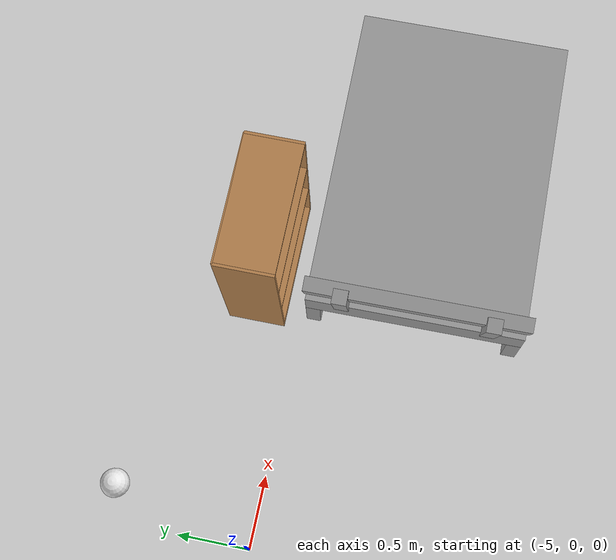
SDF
<sdf version="1.6">
 <world name="default">
  <model name="ground_plane">
   <static>1</static>
   <link name="link">
    <collision name="collision">
     <geometry><plane><normal>0 0 1</normal><size>100 100</size></plane></geometry>
     <surface><friction><ode><mu>100</mu><mu2>50</mu2></ode></friction></surface>
    </collision>
    <visual name="visual">
     <cast_shadows>0</cast_shadows>
     <geometry><plane><normal>0 0 1</normal><size>100 100</size></plane></geometry>
     <material>
      <script><uri>file://media/materials/scripts/gazebo.material</uri><name>Gazebo/Grey</name></script>
     </material>
    </visual>
   </link>
  </model>
  <model name="bookshelf">
   <static>1</static>
   <link name="link">
    <inertial><mass>1</mass></inertial>
    <collision name="back">
     <pose>0 0.005 0.6 0 -0 0</pose>
     <geometry><box><size>0.9 0.01 1.2</size></box></geometry>
    </collision>
    <visual name="visual1">
     <pose>0 0.005 0.6 0 -0 0</pose>
     <geometry><box><size>0.9 0.01 1.2</size></box></geometry>
     <material>
      <script><uri>file://media/materials/scripts/gazebo.material</uri><name>Gazebo/Wood</name></script>
     </material>
    </visual>
    <collision name="left_side">
     <pose>0.45 -0.195 0.6 0 -0 0</pose>
     <geometry><box><size>0.02 0.4 1.2</size></box></geometry>
    </collision>
    <visual name="visual2">
     <pose>0.45 -0.195 0.6 0 -0 0</pose>
     <geometry><box><size>0.02 0.4 1.2</size></box></geometry>
     <material>
      <script><uri>file://media/materials/scripts/gazebo.material</uri><name>Gazebo/Wood</name></script>
     </material>
    </visual>
    <collision name="right_side">
     <pose>-0.45 -0.195 0.6 0 -0 0</pose>
     <geometry><box><size>0.02 0.4 1.2</size></box></geometry>
    </collision>
    <visual name="visual3">
     <pose>-0.45 -0.195 0.6 0 -0 0</pose>
     <geometry><box><size>0.02 0.4 1.2</size></box></geometry>
     <material>
      <script><uri>file://media/materials/scripts/gazebo.material</uri><name>Gazebo/Wood</name></script>
     </material>
    </visual>
    <collision name="bottom">
     <pose>0 -0.195 0.03 0 -0 0</pose>
     <geometry><box><size>0.88 0.4 0.06</size></box></geometry>
    </collision>
    <visual name="visual4">
     <pose>0 -0.195 0.03 0 -0 0</pose>
     <geometry><box><size>0.88 0.4 0.06</size></box></geometry>
     <material>
      <script><uri>file://media/materials/scripts/gazebo.material</uri><name>Gazebo/Wood</name></script>
     </material>
    </visual>
    <collision name="top">
     <pose>0 -0.195 1.19 0 -0 0</pose>
     <geometry><box><size>0.88 0.4 0.02</size></box></geometry>
    </collision>
    <visual name="visual5">
     <pose>0 -0.195 1.19 0 -0 0</pose>
     <geometry><box><size>0.88 0.4 0.02</size></box></geometry>
     <material>
      <script><uri>file://media/materials/scripts/gazebo.material</uri><name>Gazebo/Wood</name></script>
     </material>
    </visual>
    <collision name="low_shelf">
     <pose>0 -0.195 0.43 0 -0 0</pose>
     <geometry><box><size>0.88 0.4 0.02</size></box></geometry>
    </collision>
    <visual name="visual6">
     <pose>0 -0.195 0.43 0 -0 0</pose>
     <geometry><box><size>0.88 0.4 0.02</size></box></geometry>
     <material>
      <script><uri>file://media/materials/scripts/gazebo.material</uri><name>Gazebo/Wood</name></script>
     </material>
    </visual>
    <collision name="high_shelf">
     <pose>0 -0.195 0.8 0 -0 0</pose>
     <geometry><box><size>0.88 0.4 0.02</size></box></geometry>
    </collision>
    <visual name="visual7">
     <pose>0 -0.195 0.8 0 -0 0</pose>
     <geometry><box><size>0.88 0.4 0.02</size></box></geometry>
     <material>
      <script><uri>file://media/materials/scripts/gazebo.material</uri><name>Gazebo/Wood</name></script>
     </material>
    </visual>
   </link>
   <pose>-2.97492 0.495259 0 0 -0 0</pose>
  </model>
  <model name="bed">
   <link name="link_0">
    <pose>0.088421 0 0.349817 0 -0 0</pose>
    <inertial>
     <mass>1</mass>
     <inertia>
      <ixx>0.166667</ixx>
      <ixy>0</ixy>
      <ixz>0</ixz>
      <iyy>0.166667</iyy>
      <iyz>0</iyz>
      <izz>0.166667</izz>
     </inertia>
    </inertial>
    <visual name="visual">
     <geometry><box><size>2.2 1.5 0.2</size></box></geometry>
     <material>
      <lighting>1</lighting>
      <script><uri>file://media/materials/scripts/gazebo.material</uri><name>Gazebo/Grey</name></script>
      <shader type="pixel"><normal_map>__default__</normal_map></shader>
      <ambient>0.3 0.3 0.3 1</ambient>
      <diffuse>0.7 0.7 0.7 1</diffuse>
      <specular>0.01 0.01 0.01 1</specular>
      <emissive>0 0 0 1</emissive>
     </material>
    </visual>
    <collision name="collision">
     <geometry><box><size>2.2 1.5 0.2</size></box></geometry>
     <surface>
      <friction>
       <ode><mu>1</mu><mu2>1</mu2><fdir1>0 0 0</fdir1><slip1>0</slip1><slip2>0</slip2></ode>
       <torsional>
        <coefficient>1</coefficient>
        <patch_radius>0</patch_radius>
        <surface_radius>0</surface_radius>
        <use_patch_radius>1</use_patch_radius>
        <ode><slip>0</slip></ode>
       </torsional>
      </friction>
      <bounce><restitution_coefficient>0</restitution_coefficient><threshold>1e+06</threshold></bounce>
      <contact>
       <collide_without_contact>0</collide_without_contact>
       <collide_without_contact_bitmask>1</collide_without_contact_bitmask>
       <collide_bitmask>1</collide_bitmask>
       <ode>
        <soft_cfm>0</soft_cfm>
        <soft_erp>0.2</soft_erp>
        <kp>1e+13</kp>
        <kd>1</kd>
        <max_vel>0.01</max_vel>
        <min_depth>0</min_depth>
       </ode>
       <bullet>
        <split_impulse>1</split_impulse>
        <split_impulse_penetration_threshold>-0.01</split_impulse_penetration_threshold>
        <soft_cfm>0</soft_cfm>
        <soft_erp>0.2</soft_erp>
        <kp>1e+13</kp>
        <kd>1</kd>
       </bullet>
      </contact>
     </surface>
    </collision>
   </link>
   <link name="link_2">
    <pose>0.088421 0 0.099817 0 -0 0</pose>
    <inertial>
     <mass>1</mass>
     <inertia>
      <ixx>0.166667</ixx>
      <ixy>0</ixy>
      <ixz>0</ixz>
      <iyy>0.166667</iyy>
      <iyz>0</iyz>
      <izz>0.166667</izz>
     </inertia>
    </inertial>
    <visual name="visual">
     <geometry><box><size>0.1 0.1 0.3</size></box></geometry>
     <material>
      <lighting>1</lighting>
      <script><uri>file://media/materials/scripts/gazebo.material</uri><name>Gazebo/Grey</name></script>
      <shader type="pixel"><normal_map>__default__</normal_map></shader>
      <ambient>0.3 0.3 0.3 1</ambient>
      <diffuse>0.7 0.7 0.7 1</diffuse>
      <specular>0.01 0.01 0.01 1</specular>
      <emissive>0 0 0 1</emissive>
     </material>
    </visual>
    <collision name="collision">
     <geometry><box><size>0.1 0.1 0.3</size></box></geometry>
     <surface>
      <friction>
       <ode><mu>1</mu><mu2>1</mu2><fdir1>0 0 0</fdir1><slip1>0</slip1><slip2>0</slip2></ode>
       <torsional>
        <coefficient>1</coefficient>
        <patch_radius>0</patch_radius>
        <surface_radius>0</surface_radius>
        <use_patch_radius>1</use_patch_radius>
        <ode><slip>0</slip></ode>
       </torsional>
      </friction>
      <bounce><restitution_coefficient>0</restitution_coefficient><threshold>1e+06</threshold></bounce>
      <contact>
       <collide_without_contact>0</collide_without_contact>
       <collide_without_contact_bitmask>1</collide_without_contact_bitmask>
       <collide_bitmask>1</collide_bitmask>
       <ode>
        <soft_cfm>0</soft_cfm>
        <soft_erp>0.2</soft_erp>
        <kp>1e+13</kp>
        <kd>1</kd>
        <max_vel>0.01</max_vel>
        <min_depth>0</min_depth>
       </ode>
       <bullet>
        <split_impulse>1</split_impulse>
        <split_impulse_penetration_threshold>-0.01</split_impulse_penetration_threshold>
        <soft_cfm>0</soft_cfm>
        <soft_erp>0.2</soft_erp>
        <kp>1e+13</kp>
        <kd>1</kd>
       </bullet>
      </contact>
     </surface>
    </collision>
   </link>
   <link name="link_2_clone">
    <pose>-0.961579 -0.7 0.099817 0 -0 0</pose>
    <inertial>
     <mass>1</mass>
     <inertia>
      <ixx>0.166667</ixx>
      <ixy>0</ixy>
      <ixz>0</ixz>
      <iyy>0.166667</iyy>
      <iyz>0</iyz>
      <izz>0.166667</izz>
     </inertia>
    </inertial>
    <visual name="visual">
     <geometry><box><size>0.1 0.1 0.3</size></box></geometry>
     <material>
      <lighting>1</lighting>
      <script><uri>file://media/materials/scripts/gazebo.material</uri><name>Gazebo/Grey</name></script>
      <shader type="pixel"><normal_map>__default__</normal_map></shader>
      <ambient>0.3 0.3 0.3 1</ambient>
      <diffuse>0.7 0.7 0.7 1</diffuse>
      <specular>0.01 0.01 0.01 1</specular>
      <emissive>0 0 0 1</emissive>
     </material>
    </visual>
    <collision name="collision">
     <geometry><box><size>0.1 0.1 0.3</size></box></geometry>
     <surface>
      <friction>
       <ode><mu>1</mu><mu2>1</mu2><fdir1>0 0 0</fdir1><slip1>0</slip1><slip2>0</slip2></ode>
       <torsional>
        <coefficient>1</coefficient>
        <patch_radius>0</patch_radius>
        <surface_radius>0</surface_radius>
        <use_patch_radius>1</use_patch_radius>
        <ode><slip>0</slip></ode>
       </torsional>
      </friction>
      <bounce><restitution_coefficient>0</restitution_coefficient><threshold>1e+06</threshold></bounce>
      <contact>
       <collide_without_contact>0</collide_without_contact>
       <collide_without_contact_bitmask>1</collide_without_contact_bitmask>
       <collide_bitmask>1</collide_bitmask>
       <ode>
        <soft_cfm>0</soft_cfm>
        <soft_erp>0.2</soft_erp>
        <kp>1e+13</kp>
        <kd>1</kd>
        <max_vel>0.01</max_vel>
        <min_depth>0</min_depth>
       </ode>
       <bullet>
        <split_impulse>1</split_impulse>
        <split_impulse_penetration_threshold>-0.01</split_impulse_penetration_threshold>
        <soft_cfm>0</soft_cfm>
        <soft_erp>0.2</soft_erp>
        <kp>1e+13</kp>
        <kd>1</kd>
       </bullet>
      </contact>
     </surface>
    </collision>
   </link>
   <link name="link_2_clone_0">
    <pose>1.13842 -0.7 0.099817 0 -0 0</pose>
    <inertial>
     <mass>1</mass>
     <inertia>
      <ixx>0.166667</ixx>
      <ixy>0</ixy>
      <ixz>0</ixz>
      <iyy>0.166667</iyy>
      <iyz>0</iyz>
      <izz>0.166667</izz>
     </inertia>
    </inertial>
    <visual name="visual">
     <geometry><box><size>0.1 0.1 0.3</size></box></geometry>
     <material>
      <lighting>1</lighting>
      <script><uri>file://media/materials/scripts/gazebo.material</uri><name>Gazebo/Grey</name></script>
      <shader type="pixel"><normal_map>__default__</normal_map></shader>
      <ambient>0.3 0.3 0.3 1</ambient>
      <diffuse>0.7 0.7 0.7 1</diffuse>
      <specular>0.01 0.01 0.01 1</specular>
      <emissive>0 0 0 1</emissive>
     </material>
    </visual>
    <collision name="collision">
     <geometry><box><size>0.1 0.1 0.3</size></box></geometry>
     <surface>
      <friction>
       <ode><mu>1</mu><mu2>1</mu2><fdir1>0 0 0</fdir1><slip1>0</slip1><slip2>0</slip2></ode>
       <torsional>
        <coefficient>1</coefficient>
        <patch_radius>0</patch_radius>
        <surface_radius>0</surface_radius>
        <use_patch_radius>1</use_patch_radius>
        <ode><slip>0</slip></ode>
       </torsional>
      </friction>
      <bounce><restitution_coefficient>0</restitution_coefficient><threshold>1e+06</threshold></bounce>
      <contact>
       <collide_without_contact>0</collide_without_contact>
       <collide_without_contact_bitmask>1</collide_without_contact_bitmask>
       <collide_bitmask>1</collide_bitmask>
       <ode>
        <soft_cfm>0</soft_cfm>
        <soft_erp>0.2</soft_erp>
        <kp>1e+13</kp>
        <kd>1</kd>
        <max_vel>0.01</max_vel>
        <min_depth>0</min_depth>
       </ode>
       <bullet>
        <split_impulse>1</split_impulse>
        <split_impulse_penetration_threshold>-0.01</split_impulse_penetration_threshold>
        <soft_cfm>0</soft_cfm>
        <soft_erp>0.2</soft_erp>
        <kp>1e+13</kp>
        <kd>1</kd>
       </bullet>
      </contact>
     </surface>
    </collision>
   </link>
   <link name="link_2_clone_1">
    <pose>1.13842 0.7 0.099817 0 -0 0</pose>
    <inertial>
     <mass>1</mass>
     <inertia>
      <ixx>0.166667</ixx>
      <ixy>0</ixy>
      <ixz>0</ixz>
      <iyy>0.166667</iyy>
      <iyz>0</iyz>
      <izz>0.166667</izz>
     </inertia>
    </inertial>
    <visual name="visual">
     <geometry><box><size>0.1 0.1 0.3</size></box></geometry>
     <material>
      <lighting>1</lighting>
      <script><uri>file://media/materials/scripts/gazebo.material</uri><name>Gazebo/Grey</name></script>
      <shader type="pixel"><normal_map>__default__</normal_map></shader>
      <ambient>0.3 0.3 0.3 1</ambient>
      <diffuse>0.7 0.7 0.7 1</diffuse>
      <specular>0.01 0.01 0.01 1</specular>
      <emissive>0 0 0 1</emissive>
     </material>
    </visual>
    <collision name="collision">
     <geometry><box><size>0.1 0.1 0.3</size></box></geometry>
     <surface>
      <friction>
       <ode><mu>1</mu><mu2>1</mu2><fdir1>0 0 0</fdir1><slip1>0</slip1><slip2>0</slip2></ode>
       <torsional>
        <coefficient>1</coefficient>
        <patch_radius>0</patch_radius>
        <surface_radius>0</surface_radius>
        <use_patch_radius>1</use_patch_radius>
        <ode><slip>0</slip></ode>
       </torsional>
      </friction>
      <bounce><restitution_coefficient>0</restitution_coefficient><threshold>1e+06</threshold></bounce>
      <contact>
       <collide_without_contact>0</collide_without_contact>
       <collide_without_contact_bitmask>1</collide_without_contact_bitmask>
       <collide_bitmask>1</collide_bitmask>
       <ode>
        <soft_cfm>0</soft_cfm>
        <soft_erp>0.2</soft_erp>
        <kp>1e+13</kp>
        <kd>1</kd>
        <max_vel>0.01</max_vel>
        <min_depth>0</min_depth>
       </ode>
       <bullet>
        <split_impulse>1</split_impulse>
        <split_impulse_penetration_threshold>-0.01</split_impulse_penetration_threshold>
        <soft_cfm>0</soft_cfm>
        <soft_erp>0.2</soft_erp>
        <kp>1e+13</kp>
        <kd>1</kd>
       </bullet>
      </contact>
     </surface>
    </collision>
   </link>
   <link name="link_2_clone_2">
    <pose>-0.961579 0.7 0.099817 0 -0 0</pose>
    <inertial>
     <mass>1</mass>
     <inertia>
      <ixx>0.166667</ixx>
      <ixy>0</ixy>
      <ixz>0</ixz>
      <iyy>0.166667</iyy>
      <iyz>0</iyz>
      <izz>0.166667</izz>
     </inertia>
    </inertial>
    <visual name="visual">
     <geometry><box><size>0.1 0.1 0.3</size></box></geometry>
     <material>
      <lighting>1</lighting>
      <script><uri>file://media/materials/scripts/gazebo.material</uri><name>Gazebo/Grey</name></script>
      <shader type="pixel"><normal_map>__default__</normal_map></shader>
      <ambient>0.3 0.3 0.3 1</ambient>
      <diffuse>0.7 0.7 0.7 1</diffuse>
      <specular>0.01 0.01 0.01 1</specular>
      <emissive>0 0 0 1</emissive>
     </material>
    </visual>
    <collision name="collision">
     <geometry><box><size>0.1 0.1 0.3</size></box></geometry>
     <surface>
      <friction>
       <ode><mu>1</mu><mu2>1</mu2><fdir1>0 0 0</fdir1><slip1>0</slip1><slip2>0</slip2></ode>
       <torsional>
        <coefficient>1</coefficient>
        <patch_radius>0</patch_radius>
        <surface_radius>0</surface_radius>
        <use_patch_radius>1</use_patch_radius>
        <ode><slip>0</slip></ode>
       </torsional>
      </friction>
      <bounce><restitution_coefficient>0</restitution_coefficient><threshold>1e+06</threshold></bounce>
      <contact>
       <collide_without_contact>0</collide_without_contact>
       <collide_without_contact_bitmask>1</collide_without_contact_bitmask>
       <collide_bitmask>1</collide_bitmask>
       <ode>
        <soft_cfm>0</soft_cfm>
        <soft_erp>0.2</soft_erp>
        <kp>1e+13</kp>
        <kd>1</kd>
        <max_vel>0.01</max_vel>
        <min_depth>0</min_depth>
       </ode>
       <bullet>
        <split_impulse>1</split_impulse>
        <split_impulse_penetration_threshold>-0.01</split_impulse_penetration_threshold>
        <soft_cfm>0</soft_cfm>
        <soft_erp>0.2</soft_erp>
        <kp>1e+13</kp>
        <kd>1</kd>
       </bullet>
      </contact>
     </surface>
    </collision>
   </link>
   <link name="link_3">
    <pose>-1.01158 -0.5 0.599817 0 -0.196 0</pose>
    <inertial>
     <mass>1</mass>
     <inertia>
      <ixx>0.166667</ixx>
      <ixy>0</ixy>
      <ixz>0</ixz>
      <iyy>0.166667</iyy>
      <iyz>0</iyz>
      <izz>0.166667</izz>
     </inertia>
    </inertial>
    <visual name="visual">
     <geometry><box><size>0.1 0.1 0.5</size></box></geometry>
     <material>
      <lighting>1</lighting>
      <script><uri>file://media/materials/scripts/gazebo.material</uri><name>Gazebo/Grey</name></script>
      <shader type="pixel"><normal_map>__default__</normal_map></shader>
      <ambient>0.3 0.3 0.3 1</ambient>
      <diffuse>0.7 0.7 0.7 1</diffuse>
      <specular>0.01 0.01 0.01 1</specular>
      <emissive>0 0 0 1</emissive>
     </material>
    </visual>
    <collision name="collision">
     <geometry><box><size>0.1 0.1 0.5</size></box></geometry>
     <surface>
      <friction>
       <ode><mu>1</mu><mu2>1</mu2><fdir1>0 0 0</fdir1><slip1>0</slip1><slip2>0</slip2></ode>
       <torsional>
        <coefficient>1</coefficient>
        <patch_radius>0</patch_radius>
        <surface_radius>0</surface_radius>
        <use_patch_radius>1</use_patch_radius>
        <ode><slip>0</slip></ode>
       </torsional>
      </friction>
      <bounce><restitution_coefficient>0</restitution_coefficient><threshold>1e+06</threshold></bounce>
      <contact>
       <collide_without_contact>0</collide_without_contact>
       <collide_without_contact_bitmask>1</collide_without_contact_bitmask>
       <collide_bitmask>1</collide_bitmask>
       <ode>
        <soft_cfm>0</soft_cfm>
        <soft_erp>0.2</soft_erp>
        <kp>1e+13</kp>
        <kd>1</kd>
        <max_vel>0.01</max_vel>
        <min_depth>0</min_depth>
       </ode>
       <bullet>
        <split_impulse>1</split_impulse>
        <split_impulse_penetration_threshold>-0.01</split_impulse_penetration_threshold>
        <soft_cfm>0</soft_cfm>
        <soft_erp>0.2</soft_erp>
        <kp>1e+13</kp>
        <kd>1</kd>
       </bullet>
      </contact>
     </surface>
    </collision>
   </link>
   <link name="link_3_clone">
    <pose>-1.01158 0.5 0.599817 0 -0.196 0</pose>
    <inertial>
     <mass>1</mass>
     <inertia>
      <ixx>0.166667</ixx>
      <ixy>0</ixy>
      <ixz>0</ixz>
      <iyy>0.166667</iyy>
      <iyz>0</iyz>
      <izz>0.166667</izz>
     </inertia>
    </inertial>
    <visual name="visual">
     <geometry><box><size>0.1 0.1 0.5</size></box></geometry>
     <material>
      <lighting>1</lighting>
      <script><uri>file://media/materials/scripts/gazebo.material</uri><name>Gazebo/Grey</name></script>
      <shader type="pixel"><normal_map>__default__</normal_map></shader>
      <ambient>0.3 0.3 0.3 1</ambient>
      <diffuse>0.7 0.7 0.7 1</diffuse>
      <specular>0.01 0.01 0.01 1</specular>
      <emissive>0 0 0 1</emissive>
     </material>
    </visual>
    <collision name="collision">
     <geometry><box><size>0.1 0.1 0.5</size></box></geometry>
     <surface>
      <friction>
       <ode><mu>1</mu><mu2>1</mu2><fdir1>0 0 0</fdir1><slip1>0</slip1><slip2>0</slip2></ode>
       <torsional>
        <coefficient>1</coefficient>
        <patch_radius>0</patch_radius>
        <surface_radius>0</surface_radius>
        <use_patch_radius>1</use_patch_radius>
        <ode><slip>0</slip></ode>
       </torsional>
      </friction>
      <bounce><restitution_coefficient>0</restitution_coefficient><threshold>1e+06</threshold></bounce>
      <contact>
       <collide_without_contact>0</collide_without_contact>
       <collide_without_contact_bitmask>1</collide_without_contact_bitmask>
       <collide_bitmask>1</collide_bitmask>
       <ode>
        <soft_cfm>0</soft_cfm>
        <soft_erp>0.2</soft_erp>
        <kp>1e+13</kp>
        <kd>1</kd>
        <max_vel>0.01</max_vel>
        <min_depth>0</min_depth>
       </ode>
       <bullet>
        <split_impulse>1</split_impulse>
        <split_impulse_penetration_threshold>-0.01</split_impulse_penetration_threshold>
        <soft_cfm>0</soft_cfm>
        <soft_erp>0.2</soft_erp>
        <kp>1e+13</kp>
        <kd>1</kd>
       </bullet>
      </contact>
     </surface>
    </collision>
   </link>
   <link name="link_5">
    <pose>-0.982367 0 0.707711 0 -0.196 0</pose>
    <inertial>
     <mass>1</mass>
     <inertia>
      <ixx>0.166667</ixx>
      <ixy>0</ixy>
      <ixz>0</ixz>
      <iyy>0.166667</iyy>
      <iyz>0</iyz>
      <izz>0.166667</izz>
     </inertia>
    </inertial>
    <visual name="visual">
     <geometry><box><size>0.1 1.5 0.2</size></box></geometry>
     <material>
      <lighting>1</lighting>
      <script><uri>file://media/materials/scripts/gazebo.material</uri><name>Gazebo/Grey</name></script>
      <shader type="pixel"><normal_map>__default__</normal_map></shader>
      <ambient>0.3 0.3 0.3 1</ambient>
      <diffuse>0.7 0.7 0.7 1</diffuse>
      <specular>0.01 0.01 0.01 1</specular>
      <emissive>0 0 0 1</emissive>
     </material>
    </visual>
    <collision name="collision">
     <geometry><box><size>0.1 1.5 0.2</size></box></geometry>
     <surface>
      <friction>
       <ode><mu>1</mu><mu2>1</mu2><fdir1>0 0 0</fdir1><slip1>0</slip1><slip2>0</slip2></ode>
       <torsional>
        <coefficient>1</coefficient>
        <patch_radius>0</patch_radius>
        <surface_radius>0</surface_radius>
        <use_patch_radius>1</use_patch_radius>
        <ode><slip>0</slip></ode>
       </torsional>
      </friction>
      <bounce><restitution_coefficient>0</restitution_coefficient><threshold>1e+06</threshold></bounce>
      <contact>
       <collide_without_contact>0</collide_without_contact>
       <collide_without_contact_bitmask>1</collide_without_contact_bitmask>
       <collide_bitmask>1</collide_bitmask>
       <ode>
        <soft_cfm>0</soft_cfm>
        <soft_erp>0.2</soft_erp>
        <kp>1e+13</kp>
        <kd>1</kd>
        <max_vel>0.01</max_vel>
        <min_depth>0</min_depth>
       </ode>
       <bullet>
        <split_impulse>1</split_impulse>
        <split_impulse_penetration_threshold>-0.01</split_impulse_penetration_threshold>
        <soft_cfm>0</soft_cfm>
        <soft_erp>0.2</soft_erp>
        <kp>1e+13</kp>
        <kd>1</kd>
       </bullet>
      </contact>
     </surface>
    </collision>
   </link>
   <joint name="link_0_JOINT_0" type="fixed">
    <parent>link_0</parent>
    <child>link_2_clone</child>
    <physics>
     <ode><limit><cfm>0</cfm><erp>0.2</erp></limit><suspension><cfm>0</cfm><erp>0.2</erp></suspension></ode>
    </physics>
   </joint>
   <joint name="link_0_JOINT_1" type="fixed">
    <parent>link_0</parent>
    <child>link_2_clone_0</child>
    <physics>
     <ode><limit><cfm>0</cfm><erp>0.2</erp></limit><suspension><cfm>0</cfm><erp>0.2</erp></suspension></ode>
    </physics>
   </joint>
   <joint name="link_0_JOINT_2" type="fixed">
    <parent>link_0</parent>
    <child>link_2_clone_2</child>
    <physics>
     <ode><limit><cfm>0</cfm><erp>0.2</erp></limit><suspension><cfm>0</cfm><erp>0.2</erp></suspension></ode>
    </physics>
   </joint>
   <joint name="link_0_JOINT_3" type="fixed">
    <parent>link_0</parent>
    <child>link_2_clone_1</child>
    <physics>
     <ode><limit><cfm>0</cfm><erp>0.2</erp></limit><suspension><cfm>0</cfm><erp>0.2</erp></suspension></ode>
    </physics>
   </joint>
   <joint name="link_0_JOINT_4" type="fixed">
    <parent>link_0</parent>
    <child>link_2</child>
    <physics>
     <ode><limit><cfm>0</cfm><erp>0.2</erp></limit><suspension><cfm>0</cfm><erp>0.2</erp></suspension></ode>
    </physics>
   </joint>
   <joint name="link_0_JOINT_5" type="fixed">
    <parent>link_0</parent>
    <child>link_3</child>
    <physics>
     <ode><limit><cfm>0</cfm><erp>0.2</erp></limit><suspension><cfm>0</cfm><erp>0.2</erp></suspension></ode>
    </physics>
   </joint>
   <joint name="link_0_JOINT_6" type="fixed">
    <parent>link_0</parent>
    <child>link_3_clone</child>
    <physics>
     <ode><limit><cfm>0</cfm><erp>0.2</erp></limit><suspension><cfm>0</cfm><erp>0.2</erp></suspension></ode>
    </physics>
   </joint>
   <joint name="link_3_JOINT_9" type="fixed">
    <parent>link_3</parent>
    <child>link_5</child>
    <physics>
     <ode><limit><cfm>0</cfm><erp>0.2</erp></limit><suspension><cfm>0</cfm><erp>0.2</erp></suspension></ode>
    </physics>
   </joint>
   <static>0</static>
   <pose>-2.32915 -0.788797 0.050183 2e-06 -1e-06 0.007583</pose>
  </model>
  <model name="my_ball">
   <link name="link_0">
    <inertial>
     <mass>1</mass>
     <inertia><ixx>0.1</ixx><ixy>0</ixy><ixz>0</ixz><iyy>0.1</iyy><iyz>0</iyz><izz>0.1</izz></inertia>
    </inertial>
    <visual name="visual">
     <geometry><sphere><radius>0.1</radius></sphere></geometry>
     <material>
      <lighting>1</lighting>
      <script><uri>file://media/materials/scripts/gazebo.material</uri><name>Gazebo/White</name></script>
      <shader type="pixel"><normal_map>__default__</normal_map></shader>
      <ambient>1 1 1 1</ambient>
      <diffuse>1 1 1 1</diffuse>
      <specular>1 1 1 1</specular>
      <emissive>1 1 1 1</emissive>
     </material>
    </visual>
    <collision name="collision">
     <geometry><sphere><radius>0.1</radius></sphere></geometry>
     <surface>
      <friction>
       <ode><mu>1</mu><mu2>1</mu2><fdir1>0 0 0</fdir1><slip1>0</slip1><slip2>0</slip2></ode>
       <torsional>
        <coefficient>1</coefficient>
        <patch_radius>0</patch_radius>
        <surface_radius>0</surface_radius>
        <use_patch_radius>1</use_patch_radius>
        <ode><slip>0</slip></ode>
       </torsional>
      </friction>
      <bounce><restitution_coefficient>0</restitution_coefficient><threshold>1e+06</threshold></bounce>
      <contact>
       <collide_without_contact>0</collide_without_contact>
       <collide_without_contact_bitmask>1</collide_without_contact_bitmask>
       <collide_bitmask>1</collide_bitmask>
       <ode>
        <soft_cfm>0</soft_cfm>
        <soft_erp>0.2</soft_erp>
        <kp>1e+13</kp>
        <kd>1</kd>
        <max_vel>0.01</max_vel>
        <min_depth>0</min_depth>
       </ode>
       <bullet>
        <split_impulse>1</split_impulse>
        <split_impulse_penetration_threshold>-0.01</split_impulse_penetration_threshold>
        <soft_cfm>0</soft_cfm>
        <soft_erp>0.2</soft_erp>
        <kp>1e+13</kp>
        <kd>1</kd>
       </bullet>
      </contact>
     </surface>
    </collision>
   </link>
   <static>0</static>
   <pose>-4.75264 0.982741 0.1 0 -0 0</pose>
  </model>
 </world>
</sdf>
